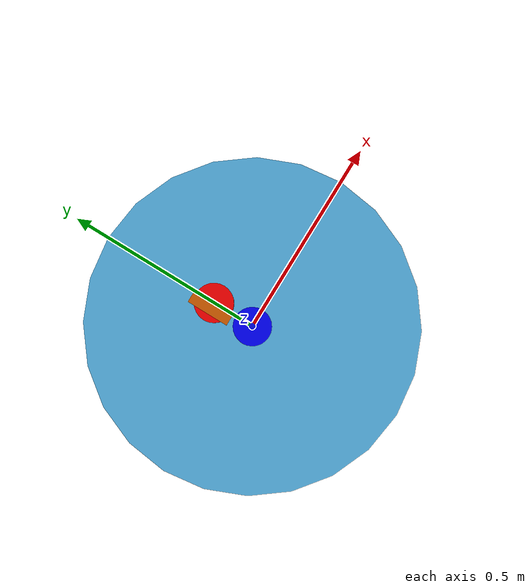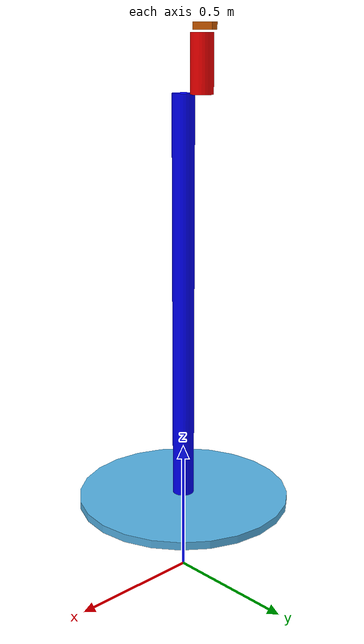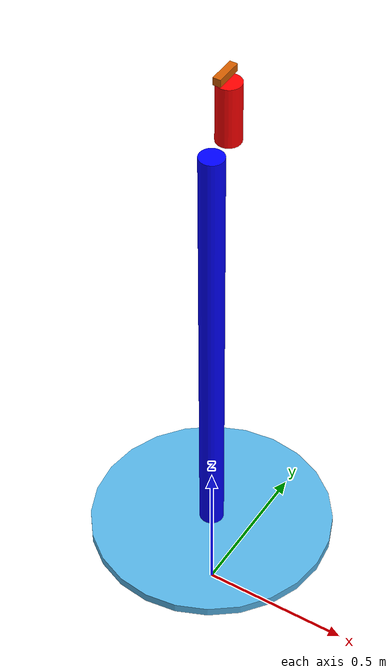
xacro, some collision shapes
<?xml version="1.0"?>
<robot name="pan_tilt" xmlns:xacro="http://ros.org/wiki/xacro">

<xacro:property name="base_link_length" value="0.03" />
    <xacro:property name="base_link_radius" value="0.4" />

    <xacro:property name="pan_link_length" value="1.5" />
    <xacro:property name="pan_link_radius" value="0.04" />

    <xacro:property name="tilt_link_length" value="0.2" />
    <xacro:property name="tilt_link_radius" value="0.04" />

  <link name="world"/>

    <joint name="world_joint" type="fixed">
        <parent link="world"/>
        <child link="base_link"/>
        <static>0</static>
    </joint>

    <link name="base_link">
        <visual>
            <geometry>
                <cylinder radius="${base_link_radius}" length="${base_link_length}"/>
            </geometry>
          <origin xyz="0.0 0.0 0.30" rpy="0.0 0.0 0.0"/>
        </visual>

        <collision>
            <geometry>
                <cylinder radius="${base_link_radius}" length="${base_link_length}"/>
            </geometry>
           <origin xyz="0.0 0.0 0.30" rpy="0.0 0.0 0.0"/>
        </collision>

        <inertial>
            <mass value="10.0"/>
            <inertia ixx="0.40075" ixy="0.0" ixz="0.0" iyy="0.40075" iyz="0.0" izz="0.8"/>
        </inertial>
    </link>

    <joint name="pan_joint" type="revolute">
        <parent link="base_link"/>
        <child link="pan_link"/>
        <origin xyz="0.0 0.0 0.315"/>
        <axis xyz="0.0 0.0 1.0"/>
       <limit lower="-1000000" upper="1000000" effort="300" velocity="0.1"/>
        <dynamics damping="50" friction="1"/>
    </joint>

    <link name="pan_link">
        <visual>
            <geometry>
                <cylinder radius="${pan_link_radius}" length="${pan_link_length}"/>
            </geometry>
        <origin xyz="0.0 0.0 0.75" rpy="0.0 0.0 0.0"/>
        <material name="red">
            <color rgba="0 0 1 1"/>
        </material>
        </visual>

        <collision>
            <geometry>
                <cylinder radius="${pan_link_radius+0.02}" length="${pan_link_length}"/>
            </geometry>
        <origin xyz="0.0 0.0 0.75" rpy="0.0 0.0 0.0"/>
        </collision>
        <inertial>
            <mass value="5.0"/>
            <inertia ixx="3.75" ixy="0.0" ixz="0.0" iyy="3.75" iyz="0.0" izz="0.04"/>
        </inertial>
    </link>

    <joint name="tilt_joint" type="revolute">
        <parent link="pan_link"/>
        <child link="tilt_link"/>
        <origin xyz="0.0 0.09 1.5"/>
        <axis xyz="0.0 1.0 0.0"/>
       <limit lower="-1000000" upper="1000000" effort="300.0" velocity="0.5"/>
        <dynamics damping="50" friction="1"/>
    </joint>

    <link name="tilt_link">
        <visual>
            <geometry>
                <cylinder radius="${tilt_link_radius}" length="${tilt_link_length}"/>
            </geometry>
            <origin xyz="0.0 0.0 0.1" rpy="0.0 0 0.0"/>
            <material name="green">
                <color rgba="1.0 0.0 0.0 1.0"/>
            </material>
        </visual>
        <collision>
            <geometry>
                <cylinder radius="${tilt_link_radius+0.2}" length="${tilt_link_length}"/>
            </geometry>
            <origin xyz="0.0 0.0 0.1" rpy="0.0 0 0.0"/>
        </collision>

        <inertial>
            <mass value="5.0"/>
            <inertia ixx="0.266" ixy="0.0" ixz="0.0" iyy="0.266" iyz="0.0" izz="0.4"/>
        </inertial>
    </link>

    <joint name="camera_joint" type="fixed">
      <origin xyz="0.0 0.0 0.22" rpy="0 -1.5707 0.0"/>
      <parent link="tilt_link"/>
      <child link="camera_bottom_screw_frame" />
    </joint>
    <link name="camera_bottom_screw_frame"/>

    <joint name="camera_link_joint" type="fixed">
      <origin xyz="0 0.0175 0.0125" rpy="0 0 0"/>
      <parent link="camera_bottom_screw_frame"/>
      <child link="camera_link" />
    </joint>

    <link name="camera_link">

      <visual>
      <origin xyz="0.0149 0.0175 0" rpy="1.5707 0 1.5707"/>
        <geometry>
          <mesh filename="model://intel_realsense_d435/meshes/d435.dae" />
        </geometry>
        <material name="camera_aluminum"/>
      </visual>
      <collision>
        <origin xyz="0 -0.0175 0" rpy="0 0 0"/>
        <geometry>
        <box size="0.02505 0.090 0.025"/>
        </geometry>
      </collision>
      <inertial>

        <mass value="0.564" />
        <origin xyz="0 0 0" />
        <inertia ixx="0.003881243" ixy="0.0" ixz="0.0" iyy="0.000498940" iyz="0.0" izz="0.003879257" />
      </inertial>
  </link>

    <joint name="camera_depth_joint" type="fixed">
      <origin xyz="0 0 0" rpy="0 0 0"/>
      <parent link="camera_link"/>
      <child link="camera_depth_frame" />
    </joint>
    <link name="camera_depth_frame"/>

    <joint name="camera_depth_optical_joint" type="fixed">
      <origin xyz="0 0 0" rpy="-1.5707 0 -1.5707" />
      <parent link="camera_depth_frame" />
      <child link="camera_depth_optical_frame" />
    </joint>
    <link name="camera_depth_optical_frame"/>

    <joint name="$camera_left_ir_joint" type="fixed">
      <origin xyz="0 0.0 0" rpy="0 0 0" />
      <parent link="camera_depth_frame" />
      <child link="camera_left_ir_frame" />
    </joint>
    <link name="camera_left_ir_frame"/>

    <joint name="camera_left_ir_optical_joint" type="fixed">
      <origin xyz="0 0 0" rpy="-1.5707 0 -1.5707" />
      <parent link="camera_left_ir_frame" />
      <child link="camera_left_ir_optical_frame" />
    </joint>
    <link name="camera_left_ir_optical_frame"/>

    <joint name="camera_right_ir_joint" type="fixed">
      <origin xyz="0 -0.050 0" rpy="0 0 0" />
      <parent link="camera_depth_frame" />
      <child link="camera_right_ir_frame" />
    </joint>
    <link name="camera_right_ir_frame"/>

    <joint name="camera_right_ir_optical_joint" type="fixed">
      <origin xyz="0 0 0" rpy="-1.5707 0 -1.5707" />
      <parent link="camera_right_ir_frame" />
      <child link="camera_right_ir_optical_frame" />
    </joint>
    <link name="camera_right_ir_optical_frame"/>

    <joint name="camera_color_joint" type="fixed">
      <origin xyz="0 0.015 0" rpy="0 0 0" />
      <parent link="camera_depth_frame" />
      <child link="camera_color_frame" />
    </joint>
    <link name="camera_color_frame"/>

    <joint name="camera_color_optical_joint" type="fixed">
      <origin xyz="0 0 0" rpy="-1.5707 0 -1.5707" />
      <parent link="camera_color_frame" />
      <child link="camera_color_optical_frame" />
    </joint>
    <link name="camera_color_optical_frame"/>

    <gazebo reference="camera_link">
     <self_collide>0</self_collide>
      <enable_wind>0</enable_wind>
      <kinematic>0</kinematic>
      <gravity>0</gravity>
      <mu2>1</mu2>
      <fdir1>0 0 0</fdir1>
      <kp>1e+13</kp>
      <kd>1</kd>
      <sensor name="cameracolor" type="camera">
        <camera name="camera">
          <horizontal_fov>1.211258501</horizontal_fov>
          <image>
            <width>640</width>
            <height>480</height>
            <format>RGB_INT8</format>
          </image>
          <clip>
            <near>0.1</near>
            <far>100</far>
          </clip>
          <noise>
            <type>gaussian</type>
            <mean>0.0</mean>
            <stddev>0.007</stddev>
          </noise>
        </camera>
        <always_on>1</always_on>
        <update_rate>30</update_rate>
        <visualize>1</visualize>
      </sensor>
      <sensor name="cameraired1" type="camera">
        <camera name="camera">
          <horizontal_fov>1.487020523</horizontal_fov>
          <image>
            <width>1280</width>
            <height>720</height>
            <format>L_INT8</format>
          </image>
          <clip>
            <near>0.1</near>
            <far>100</far>
          </clip>
          <noise>
            <type>gaussian</type>
            <mean>0.0</mean>
            <stddev>0.05</stddev>
          </noise>
        </camera>
        <always_on>1</always_on>
        <update_rate>90</update_rate>
        <visualize>1</visualize>
      </sensor>
      <sensor name="cameraired2" type="camera">
        <camera name="camera">
          <horizontal_fov>1.487020523</horizontal_fov>
          <image>
            <width>1280</width>
            <height>720</height>
            <format>L_INT8</format>
          </image>
          <clip>
            <near>0.1</near>
            <far>100</far>
          </clip>
          <noise>
            <type>gaussian</type>
            <mean>0.0</mean>
            <stddev>0.05</stddev>
          </noise>
        </camera>
        <always_on>1</always_on>
        <update_rate>90</update_rate>
        <visualize>1</visualize>
      </sensor>
      <sensor name="cameradepth" type="depth">
        <camera name="camera">
          <horizontal_fov>1.487020523</horizontal_fov>
          <image>
            <width>640</width>
            <height>480</height>
          </image>
          <clip>
            <near>0.1</near>
            <far>100</far>
          </clip>
          <noise>
            <type>gaussian</type>
            <mean>0.0</mean>
            <stddev>0.100</stddev>
          </noise>
        </camera>
        <always_on>1</always_on>
        <update_rate>90</update_rate>
        <visualize>1</visualize>
      </sensor>
    </gazebo>
    <gazebo>
    <plugin name="gazebo_api" filename="libgazebo_ros_api_plugin.so"/>
    <plugin name="my_pantilt2" filename="libmypantilt2_plugin.so"/>
    <plugin name="my_pantilt1" filename="libmypantilt1_plugin.so"/>
    <plugin name="camera" filename="librealsense_gazebo_plugin.so">
        <prefix>camera</prefix>
        <depthUpdateRate>30.0</depthUpdateRate>
        <colorUpdateRate>30.0</colorUpdateRate>
        <infraredUpdateRate>30.0</infraredUpdateRate>
        <depthTopicName>depth/image_raw</depthTopicName>
        <depthCameraInfoTopicName>depth/camera_info</depthCameraInfoTopicName>
        <colorTopicName>color/image_raw</colorTopicName>
        <colorCameraInfoTopicName>color/camera_info</colorCameraInfoTopicName>
        <infrared1TopicName>infra1/image_raw</infrared1TopicName>
        <infrared1CameraInfoTopicName>infra1/camera_info</infrared1CameraInfoTopicName>
        <infrared2TopicName>infra2/image_raw</infrared2TopicName>
        <infrared2CameraInfoTopicName>infra2/camera_info</infrared2CameraInfoTopicName>
        <colorOpticalframeName>camera_color_optical_frame</colorOpticalframeName>
        <depthOpticalframeName>camera_depth_optical_frame</depthOpticalframeName>
        <infrared1OpticalframeName>camera_left_ir_optical_frame</infrared1OpticalframeName>
        <infrared2OpticalframeName>camera_right_ir_optical_frame</infrared2OpticalframeName>
        <rangeMinDepth>0.2</rangeMinDepth>
        <rangeMaxDepth>10.0</rangeMaxDepth>
        <pointCloud>true</pointCloud>
        <pointCloudTopicName>depth/color/points</pointCloudTopicName>
        <pointCloudCutoff>0.25</pointCloudCutoff>
        <pointCloudCutoffMax>9.0</pointCloudCutoffMax>
      </plugin>
</gazebo>
</robot>
